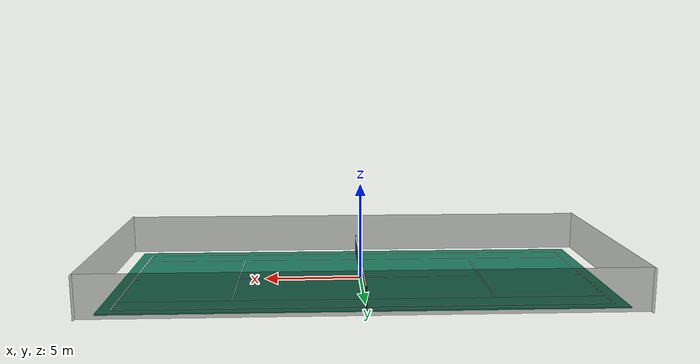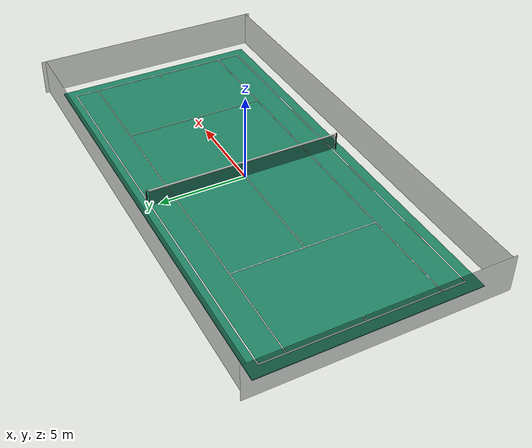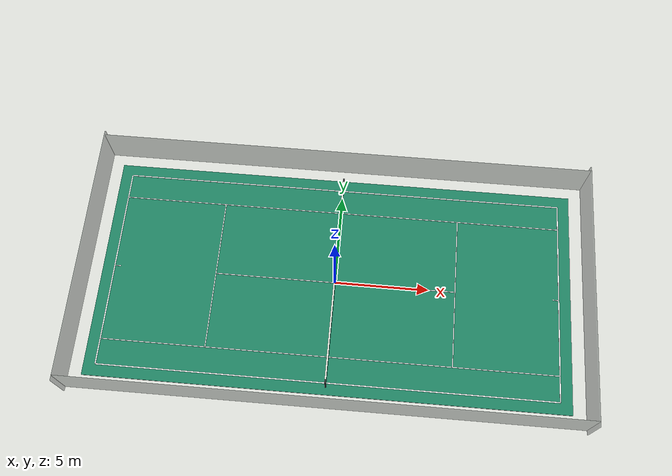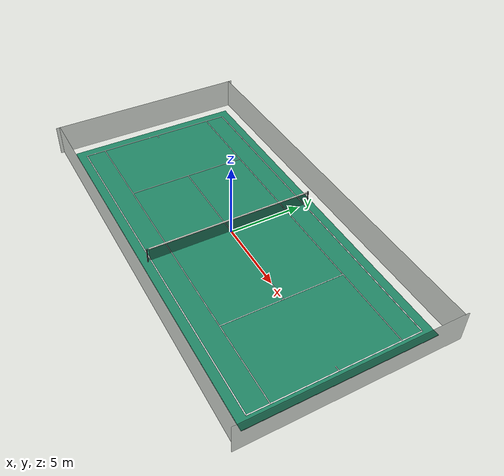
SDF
<?xml version="1.0"?>
<sdf version="1.10">
  <world name="tennis_court">
    <physics name="default_physics" type="ignored">
      <max_step_size>0.002</max_step_size>
      <real_time_factor>1.0</real_time_factor>
      <real_time_update_rate>500</real_time_update_rate>
    </physics>

    <plugin filename="gz-sim-physics-system" name="gz::sim::systems::Physics"/>
    <plugin filename="gz-sim-user-commands-system" name="gz::sim::systems::UserCommands"/>
    <plugin filename="gz-sim-scene-broadcaster-system" name="gz::sim::systems::SceneBroadcaster"/>
    <plugin filename="gz-sim-contact-system" name="gz::sim::systems::Contact"/>
    <plugin filename="gz-sim-sensors-system" name="gz::sim::systems::Sensors">
      <render_engine>ogre2</render_engine>
    </plugin>
    <plugin filename="gz-sim-imu-system" name="gz::sim::systems::Imu"/>

    <scene>
      <ambient>0.55 0.55 0.55 1</ambient>
      <background>0.72 0.82 0.92 1</background>
      <shadows>true</shadows>
    </scene>

    <spherical_coordinates>
      <surface_model>EARTH_WGS84</surface_model>
      <latitude_deg>23.125</latitude_deg>
      <longitude_deg>113.35</longitude_deg>
      <elevation>20</elevation>
      <heading_deg>0</heading_deg>
    </spherical_coordinates>

    <light name="sun" type="directional">
      <cast_shadows>true</cast_shadows>
      <pose>-6 -4 10 0 0 0</pose>
      <diffuse>0.9 0.9 0.85 1</diffuse>
      <specular>0.25 0.25 0.2 1</specular>
      <direction>0.45 0.35 -0.82</direction>
    </light>

    <model name="hard_tennis_court">
      <static>true</static>
      <link name="court_link">
        <collision name="surface_collision">
          <geometry>
            <box>
              <size>25.0 12.2 0.05</size>
            </box>
          </geometry>
          <surface>
            <friction>
              <ode>
                <mu>0.85</mu>
                <mu2>0.85</mu2>
              </ode>
            </friction>
          </surface>
        </collision>
        <visual name="surface_visual">
          <geometry>
            <box>
              <size>25.0 12.2 0.05</size>
            </box>
          </geometry>
          <material>
            <ambient>0.10 0.42 0.32 1</ambient>
            <diffuse>0.12 0.50 0.38 1</diffuse>
            <specular>0.04 0.06 0.05 1</specular>
          </material>
        </visual>
      </link>
    </model>

    <model name="court_lines">
      <static>true</static>
      <link name="lines_link">
        <visual name="baseline_north">
          <pose>11.885 0 0.031 0 0 0</pose>
          <geometry><box><size>0.06 10.97 0.012</size></box></geometry>
          <material><ambient>1 1 1 1</ambient><diffuse>1 1 1 1</diffuse></material>
        </visual>
        <visual name="baseline_south">
          <pose>-11.885 0 0.031 0 0 0</pose>
          <geometry><box><size>0.06 10.97 0.012</size></box></geometry>
          <material><ambient>1 1 1 1</ambient><diffuse>1 1 1 1</diffuse></material>
        </visual>
        <visual name="sideline_east">
          <pose>0 5.485 0.031 0 0 0</pose>
          <geometry><box><size>23.77 0.06 0.012</size></box></geometry>
          <material><ambient>1 1 1 1</ambient><diffuse>1 1 1 1</diffuse></material>
        </visual>
        <visual name="sideline_west">
          <pose>0 -5.485 0.031 0 0 0</pose>
          <geometry><box><size>23.77 0.06 0.012</size></box></geometry>
          <material><ambient>1 1 1 1</ambient><diffuse>1 1 1 1</diffuse></material>
        </visual>
        <visual name="singles_east">
          <pose>0 4.115 0.032 0 0 0</pose>
          <geometry><box><size>23.77 0.045 0.012</size></box></geometry>
          <material><ambient>1 1 1 1</ambient><diffuse>1 1 1 1</diffuse></material>
        </visual>
        <visual name="singles_west">
          <pose>0 -4.115 0.032 0 0 0</pose>
          <geometry><box><size>23.77 0.045 0.012</size></box></geometry>
          <material><ambient>1 1 1 1</ambient><diffuse>1 1 1 1</diffuse></material>
        </visual>
        <visual name="service_line_north">
          <pose>6.4 0 0.033 0 0 0</pose>
          <geometry><box><size>0.045 8.23 0.012</size></box></geometry>
          <material><ambient>1 1 1 1</ambient><diffuse>1 1 1 1</diffuse></material>
        </visual>
        <visual name="service_line_south">
          <pose>-6.4 0 0.033 0 0 0</pose>
          <geometry><box><size>0.045 8.23 0.012</size></box></geometry>
          <material><ambient>1 1 1 1</ambient><diffuse>1 1 1 1</diffuse></material>
        </visual>
        <visual name="center_service_line">
          <pose>0 0 0.034 0 0 0</pose>
          <geometry><box><size>12.8 0.045 0.012</size></box></geometry>
          <material><ambient>1 1 1 1</ambient><diffuse>1 1 1 1</diffuse></material>
        </visual>
        <visual name="center_mark_north">
          <pose>11.72 0 0.035 0 0 0</pose>
          <geometry><box><size>0.33 0.045 0.012</size></box></geometry>
          <material><ambient>1 1 1 1</ambient><diffuse>1 1 1 1</diffuse></material>
        </visual>
        <visual name="center_mark_south">
          <pose>-11.72 0 0.035 0 0 0</pose>
          <geometry><box><size>0.33 0.045 0.012</size></box></geometry>
          <material><ambient>1 1 1 1</ambient><diffuse>1 1 1 1</diffuse></material>
        </visual>
      </link>
    </model>

    <model name="net">
      <static>true</static>
      <link name="net_link">
        <visual name="net_mesh">
          <pose>0 0 0.57 0 0 0</pose>
          <geometry><box><size>0.06 11.1 0.92</size></box></geometry>
          <material>
            <ambient>0.02 0.02 0.025 0.45</ambient>
            <diffuse>0.02 0.02 0.025 0.45</diffuse>
          </material>
          <transparency>0.55</transparency>
        </visual>
        <collision name="net_collision">
          <pose>0 0 0.57 0 0 0</pose>
          <geometry><box><size>0.06 11.1 0.92</size></box></geometry>
        </collision>
        <visual name="net_top_band">
          <pose>0 0 1.03 0 0 0</pose>
          <geometry><box><size>0.08 11.1 0.06</size></box></geometry>
          <material><ambient>0.92 0.92 0.88 1</ambient><diffuse>0.92 0.92 0.88 1</diffuse></material>
        </visual>
        <visual name="net_post_east">
          <pose>0 5.68 0.55 0 0 0</pose>
          <geometry><cylinder><radius>0.045</radius><length>1.1</length></cylinder></geometry>
          <material><ambient>0.04 0.04 0.045 1</ambient><diffuse>0.06 0.06 0.065 1</diffuse></material>
        </visual>
        <collision name="net_post_east_collision">
          <pose>0 5.68 0.55 0 0 0</pose>
          <geometry><cylinder><radius>0.045</radius><length>1.1</length></cylinder></geometry>
        </collision>
        <visual name="net_post_west">
          <pose>0 -5.68 0.55 0 0 0</pose>
          <geometry><cylinder><radius>0.045</radius><length>1.1</length></cylinder></geometry>
          <material><ambient>0.04 0.04 0.045 1</ambient><diffuse>0.06 0.06 0.065 1</diffuse></material>
        </visual>
        <collision name="net_post_west_collision">
          <pose>0 -5.68 0.55 0 0 0</pose>
          <geometry><cylinder><radius>0.045</radius><length>1.1</length></cylinder></geometry>
        </collision>
      </link>
    </model>

    <model name="perimeter_fence">
      <static>true</static>
      <link name="fence_link">
        <visual name="fence_north">
          <pose>13.2 0 1.05 0 0 0</pose>
          <geometry><box><size>0.06 14.0 2.1</size></box></geometry>
          <material><ambient>0.05 0.08 0.07 0.35</ambient><diffuse>0.05 0.08 0.07 0.35</diffuse></material>
          <transparency>0.62</transparency>
        </visual>
        <collision name="fence_north_collision">
          <pose>13.2 0 1.05 0 0 0</pose>
          <geometry><box><size>0.06 14.0 2.1</size></box></geometry>
        </collision>
        <visual name="fence_south">
          <pose>-13.2 0 1.05 0 0 0</pose>
          <geometry><box><size>0.06 14.0 2.1</size></box></geometry>
          <material><ambient>0.05 0.08 0.07 0.35</ambient><diffuse>0.05 0.08 0.07 0.35</diffuse></material>
          <transparency>0.62</transparency>
        </visual>
        <collision name="fence_south_collision">
          <pose>-13.2 0 1.05 0 0 0</pose>
          <geometry><box><size>0.06 14.0 2.1</size></box></geometry>
        </collision>
        <visual name="fence_east">
          <pose>0 6.75 1.05 0 0 0</pose>
          <geometry><box><size>26.4 0.06 2.1</size></box></geometry>
          <material><ambient>0.05 0.08 0.07 0.35</ambient><diffuse>0.05 0.08 0.07 0.35</diffuse></material>
          <transparency>0.62</transparency>
        </visual>
        <collision name="fence_east_collision">
          <pose>0 6.75 1.05 0 0 0</pose>
          <geometry><box><size>26.4 0.06 2.1</size></box></geometry>
        </collision>
        <visual name="fence_west">
          <pose>0 -6.75 1.05 0 0 0</pose>
          <geometry><box><size>26.4 0.06 2.1</size></box></geometry>
          <material><ambient>0.05 0.08 0.07 0.35</ambient><diffuse>0.05 0.08 0.07 0.35</diffuse></material>
          <transparency>0.62</transparency>
        </visual>
        <collision name="fence_west_collision">
          <pose>0 -6.75 1.05 0 0 0</pose>
          <geometry><box><size>26.4 0.06 2.1</size></box></geometry>
        </collision>
      </link>
    </model>
  </world>
</sdf>
